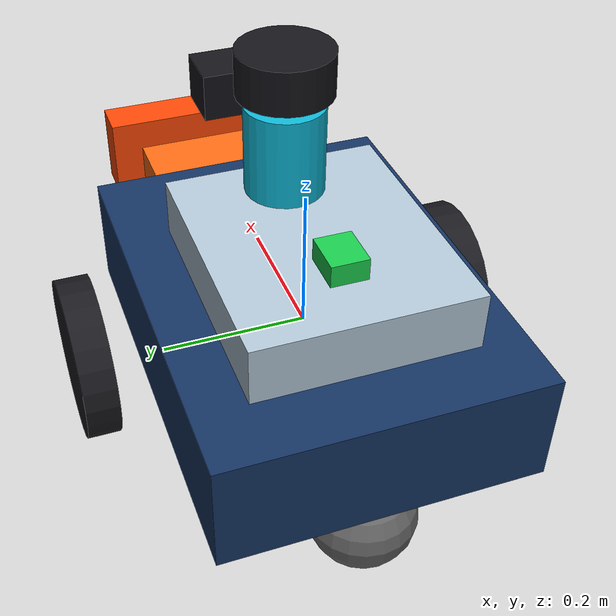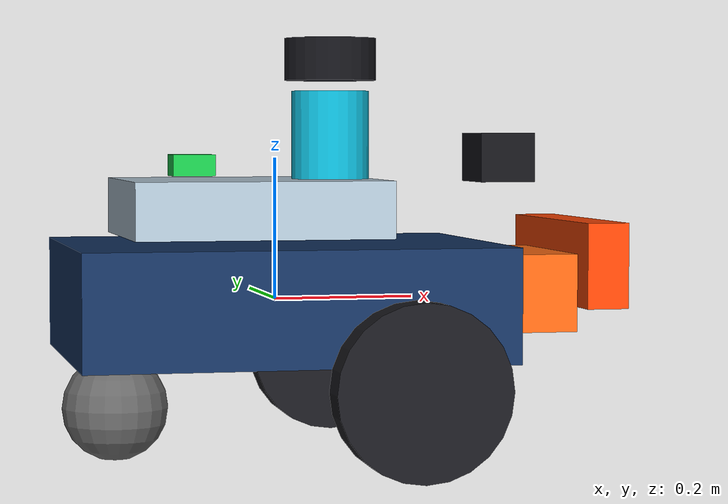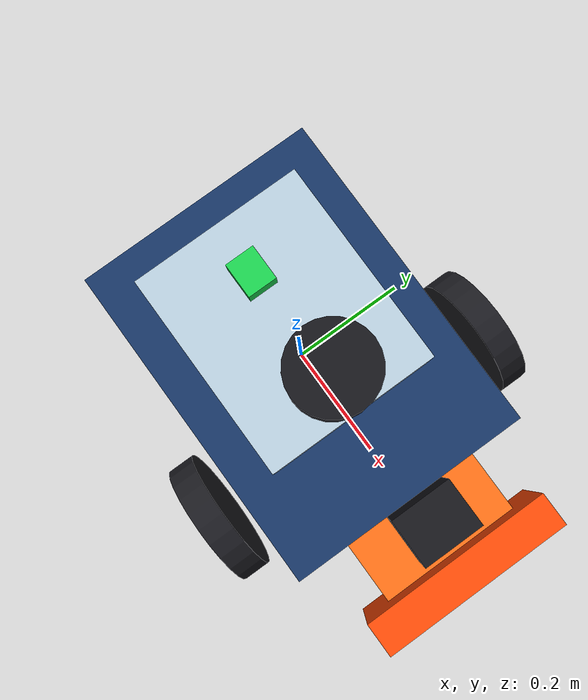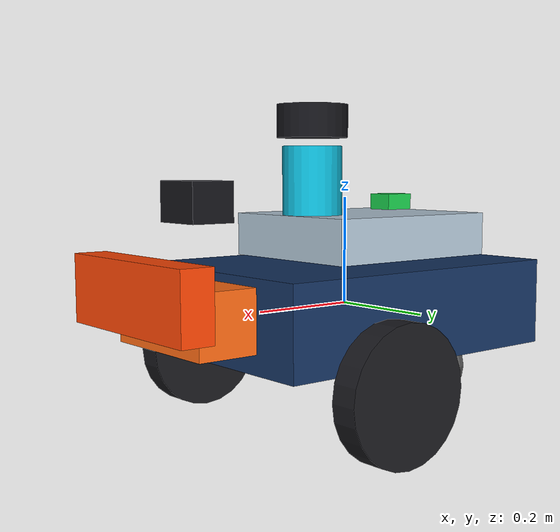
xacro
<?xml version="1.0"?>
<robot name="archivebot" xmlns:xacro="http://www.ros.org/wiki/xacro">

  <xacro:property name="wheel_radius" value="0.12"/>
  <xacro:property name="wheel_width" value="0.05"/>
  <xacro:property name="wheel_y" value="0.29"/>

  <!-- Main robot body -->
  <link name="base_link">
    <inertial>
      <mass value="5.0"/>
      <origin xyz="0 0 0"/>
      <inertia ixx="0.10" ixy="0" ixz="0"
               iyy="0.19" iyz="0" izz="0.27"/>
    </inertial>

    <visual>
      <geometry>
        <box size="0.60 0.44 0.16"/>
      </geometry>
      <material name="navy">
        <color rgba="0.08 0.20 0.38 1"/>
      </material>
    </visual>

    <!-- Narrow front nose -->
    <visual>
      <origin xyz="0.32 0 0.01"/>
      <geometry>
        <box size="0.18 0.25 0.11"/>
      </geometry>
      <material name="orange">
        <color rgba="1.0 0.42 0.08 1"/>
      </material>
    </visual>

    <!-- Upper sensor platform -->
    <visual>
      <origin xyz="-0.04 0 0.13"/>
      <geometry>
        <box size="0.36 0.30 0.08"/>
      </geometry>
      <material name="silver">
        <color rgba="0.70 0.78 0.84 1"/>
      </material>
    </visual>

    <!-- Sensor mounting tower -->
    <visual>
      <origin xyz="0.08 0 0.23"/>
      <geometry>
        <cylinder radius="0.055" length="0.13"/>
      </geometry>
      <material name="cyan">
        <color rgba="0.05 0.72 0.84 1"/>
      </material>
    </visual>

    <collision>
      <geometry>
        <box size="0.60 0.44 0.16"/>
      </geometry>
    </collision>

    <collision>
      <origin xyz="0.32 0 0.01"/>
      <geometry>
        <box size="0.18 0.25 0.11"/>
      </geometry>
    </collision>
  </link>

  <!-- Two driven wheels -->
  <xacro:macro name="drive_wheel" params="side y">
    <link name="${side}_wheel_link">
      <inertial>
        <mass value="0.5"/>
        <inertia ixx="0.0022" ixy="0" ixz="0"
                 iyy="0.0036" iyz="0" izz="0.0022"/>
      </inertial>

      <visual>
        <origin rpy="1.5707963 0 0"/>
        <geometry>
          <cylinder radius="${wheel_radius}"
                    length="${wheel_width}"/>
        </geometry>
        <material name="rubber">
          <color rgba="0.10 0.10 0.12 1"/>
        </material>
      </visual>

      <collision>
        <origin rpy="1.5707963 0 0"/>
        <geometry>
          <cylinder radius="${wheel_radius}"
                    length="${wheel_width}"/>
        </geometry>
      </collision>
    </link>

    <joint name="${side}_wheel_joint" type="continuous">
      <parent link="base_link"/>
      <child link="${side}_wheel_link"/>
      <origin xyz="0.14 ${y} -0.105"/>
      <axis xyz="0 1 0"/>
    </joint>
  </xacro:macro>

  <xacro:drive_wheel side="left" y="${wheel_y}"/>
  <xacro:drive_wheel side="right" y="${-wheel_y}"/>

  <!-- Rear spherical support -->
  <link name="rear_caster_link">
    <inertial>
      <mass value="0.1"/>
      <inertia ixx="0.0002" ixy="0" ixz="0"
               iyy="0.0002" iyz="0" izz="0.0002"/>
    </inertial>

    <visual>
      <geometry>
        <sphere radius="0.075"/>
      </geometry>
      <material name="gray">
        <color rgba="0.4 0.4 0.4 1"/>
      </material>
    </visual>

    <collision>
      <geometry>
        <sphere radius="0.075"/>
      </geometry>
    </collision>
  </link>

  <joint name="rear_caster_joint" type="fixed">
    <parent link="base_link"/>
    <child link="rear_caster_link"/>
    <origin xyz="-0.23 0 -0.15"/>
  </joint>

  <!-- Gazebo differential drive -->
  <gazebo>
    <plugin filename="gz-sim-diff-drive-system"
            name="gz::sim::systems::DiffDrive">
      <left_joint>left_wheel_joint</left_joint>
      <right_joint>right_wheel_joint</right_joint>
      <wheel_separation>0.58</wheel_separation>
      <wheel_radius>0.12</wheel_radius>
      <topic>/cmd_vel</topic>
      <odom_topic>/odom</odom_topic>
      <tf_topic>/tf</tf_topic>
      <frame_id>odom</frame_id>
      <child_frame_id>base_link</child_frame_id>
    </plugin>

  <!-- V9 Gazebo gercek konum yayini -->
  <plugin filename="gz-sim-odometry-publisher-system"
          name="gz::sim::systems::OdometryPublisher">
    <odom_publish_frequency>20</odom_publish_frequency>
    <dimensions>2</dimensions>
    <odom_topic>/archivebot/ground_truth/odom</odom_topic>
    <odom_frame>world</odom_frame>
    <robot_base_frame>archivebot/base_link</robot_base_frame>
    <tf_topic>/archivebot/ground_truth/pose</tf_topic>
  </plugin>
</gazebo>

  <!-- ArchiveBot 360-degree LiDAR -->
  <link name="lidar_link">
    <inertial>
      <mass value="0.12"/>
      <inertia ixx="0.0002" ixy="0" ixz="0"
               iyy="0.0002" iyz="0" izz="0.0002"/>
    </inertial>
    <visual>
      <geometry>
        <cylinder radius="0.065" length="0.06"/>
      </geometry>
      <material name="lidar_dark">
        <color rgba="0.08 0.08 0.10 1"/>
      </material>
    </visual>
  </link>

  <joint name="lidar_fixed_joint" type="fixed">
    <parent link="base_link"/>
    <child link="lidar_link"/>
    <origin xyz="0.08 0 0.34"/>
  </joint>

  <gazebo reference="lidar_link">
    <sensor name="archive_lidar" type="gpu_lidar">
      <pose>0 0 0.08 0 0 0</pose>
      <always_on>true</always_on>
      <update_rate>5</update_rate>
      <visualize>false</visualize>
      <topic>/scan</topic>
      <gz_frame_id>lidar_link</gz_frame_id>
      <lidar>
        <scan>
          <horizontal>
            <samples>180</samples>
            <resolution>1</resolution>
            <min_angle>-3.14159</min_angle>
            <max_angle>3.14159</max_angle>
          </horizontal>
        </scan>
        <range>
          <min>0.15</min>
          <max>6.0</max>
          <resolution>0.01</resolution>
        </range>
      </lidar>
    </sensor>
  </gazebo>

  <!-- ArchiveBot RGB Camera -->
  <link name="camera_link">
    <inertial>
      <mass value="0.15"/>
      <inertia ixx="0.0003" ixy="0" ixz="0"
               iyy="0.0003" iyz="0" izz="0.0003"/>
    </inertial>

    <visual>
      <geometry>
        <box size="0.08 0.10 0.07"/>
      </geometry>
      <material name="camera_black">
        <color rgba="0.08 0.08 0.1 1"/>
      </material>
    </visual>
  </link>

  <joint name="camera_fixed_joint" type="fixed">
    <parent link="base_link"/>
    <child link="camera_link"/>
    <origin xyz="0.33 0 0.20" rpy="0 0 0"/>
  </joint>

  <gazebo reference="camera_link">
    <sensor name="archive_camera" type="camera">
      <always_on>true</always_on>
      <update_rate>5</update_rate>
      <visualize>false</visualize>
      <topic>/archivebot/camera/image</topic>
      <gz_frame_id>camera_link</gz_frame_id>

      <camera>
        <horizontal_fov>1.2</horizontal_fov>
        <image>
          <width>320</width>
          <height>240</height>
          <format>R8G8B8</format>
        </image>
        <clip>
          <near>0.1</near>
          <far>12.0</far>
        </clip>
      </camera>
    </sensor>
  </gazebo>

  <!-- ArchiveBot IMU Sensor -->
  <link name="imu_link">
    <inertial>
      <mass value="0.06"/>
      <inertia ixx="0.00001" ixy="0" ixz="0"
               iyy="0.00001" iyz="0" izz="0.00001"/>
    </inertial>
    <visual>
      <geometry>
        <box size="0.06 0.05 0.03"/>
      </geometry>
      <material name="imu_green">
        <color rgba="0.1 0.8 0.3 1"/>
      </material>
    </visual>
  </link>

  <joint name="imu_fixed_joint" type="fixed">
    <parent link="base_link"/>
    <child link="imu_link"/>
    <origin xyz="-0.12 0 0.19"/>
  </joint>

  <gazebo reference="imu_link">
    <sensor name="archive_imu" type="imu">
      <always_on>true</always_on>
      <update_rate>30</update_rate>
      <topic>/archivebot/imu</topic>
      <gz_frame_id>imu_link</gz_frame_id>
    </sensor>
  </gazebo>

  <!-- ArchiveBot Front Safety Bumper -->
  <link name="bumper_link">
    <inertial>
      <mass value="0.10"/>
      <inertia ixx="0.0002" ixy="0" ixz="0"
               iyy="0.0002" iyz="0" izz="0.0002"/>
    </inertial>

    <visual>
      <geometry>
        <box size="0.06 0.34 0.12"/>
      </geometry>
      <material name="safety_orange">
        <color rgba="1.0 0.28 0.02 1"/>
      </material>
    </visual>

    <collision>
      <geometry>
        <box size="0.06 0.34 0.12"/>
      </geometry>
    </collision>
  </link>

  <joint name="bumper_joint" type="fixed">
    <parent link="base_link"/>
    <child link="bumper_link"/>
    <origin xyz="0.44 0 0.05"/>
  </joint>

  <gazebo reference="bumper_joint">
    <preserveFixedJoint>true</preserveFixedJoint>
  </gazebo>

  <gazebo reference="bumper_link">
    <sensor name="archive_bumper" type="contact">
      <always_on>true</always_on>
      <update_rate>20</update_rate>
      <topic>/archivebot/bumper/contacts</topic>
      <contact>
        <collision>bumper_link_collision</collision>
      </contact>
    </sensor>
  </gazebo>

</robot>
